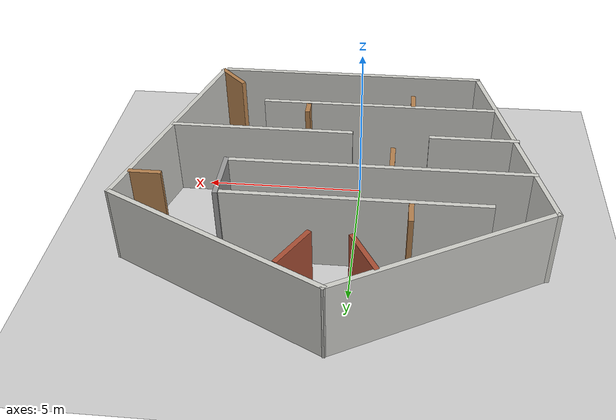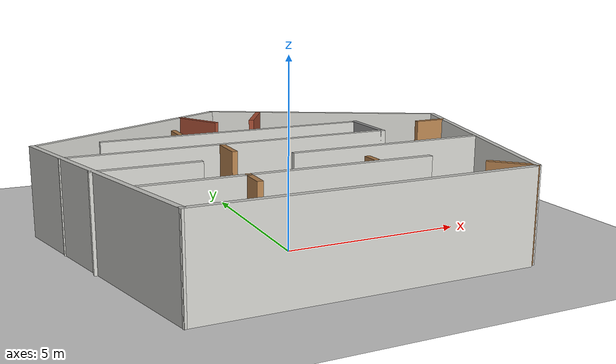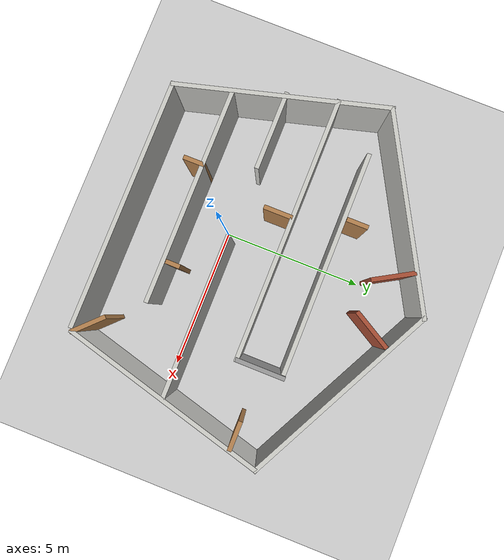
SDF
<sdf version="1.6">
 <world name="default">
  <light name="sun" type="directional">
   <pose>0 0 10 0 -0 0</pose>
   <diffuse>0.8 0.8 0.8 1</diffuse>
   <specular>0.2 0.2 0.2 1</specular>
   <attenuation>
    <range>1000</range>
    <constant>0.9</constant>
    <linear>0.01</linear>
    <quadratic>0.001</quadratic>
   </attenuation>
   <direction>-0.5 0.1 -0.9</direction>
  </light>
  <model name="ground_plane">
   <static>1</static>
   <link name="link">
    <collision name="collision">
     <geometry><plane><normal>0 0 1</normal><size>100 100</size></plane></geometry>
     <surface>
      <contact><collide_bitmask>65535</collide_bitmask></contact>
      <friction><ode><mu>100</mu><mu2>50</mu2></ode></friction>
     </surface>
    </collision>
    <visual name="visual">
     <cast_shadows>0</cast_shadows>
     <geometry><plane><normal>0 0 1</normal><size>100 100</size></plane></geometry>
     <material>
      <script><uri>file://media/materials/scripts/gazebo.material</uri><name>Gazebo/Grey</name></script>
     </material>
    </visual>
   </link>
  </model>
  <gravity>0 0 -9.8</gravity>
  <magnetic_field>6e-06 2.3e-05 -4.2e-05</magnetic_field>
  <atmosphere type="adiabatic"/>
  <physics name="default_physics" default="0" type="ode">
   <max_step_size>0.001</max_step_size>
   <real_time_factor>1</real_time_factor>
   <real_time_update_rate>1000</real_time_update_rate>
  </physics>
  <scene><ambient>0.4 0.4 0.4 1</ambient><background>0.7 0.7 0.7 1</background><shadows>1</shadows></scene>
  <audio><device>default</device></audio>
  <spherical_coordinates>
   <surface_model>EARTH_WGS84</surface_model>
   <latitude_deg>0</latitude_deg>
   <longitude_deg>0</longitude_deg>
   <elevation>0</elevation>
   <heading_deg>0</heading_deg>
  </spherical_coordinates>
  <model name="khj_world_1">
   <pose>0.620873 1.91877 0 0 -0 0</pose>
   <link name="Wall_33">
    <collision name="Wall_33_Collision">
     <geometry><box><size>7.10668 0.15 2.5</size></box></geometry>
     <pose>0 0 1.25 0 -0 0</pose>
    </collision>
    <visual name="Wall_33_Visual">
     <pose>0 0 1.25 0 -0 0</pose>
     <geometry><box><size>7.10668 0.15 2.5</size></box></geometry>
     <material>
      <script><uri>file://media/materials/scripts/gazebo.material</uri><name>Gazebo/CeilingTiled</name></script>
      <ambient>1 1 1 1</ambient>
     </material>
     <meta><layer>0</layer></meta>
    </visual>
    <pose>-3.20376 3.54471 0 0 -0 -2.63409</pose>
   </link>
   <link name="Wall_34">
    <collision name="Wall_34_Collision">
     <geometry><box><size>7.5 0.15 2.5</size></box></geometry>
     <pose>0 0 1.25 0 -0 0</pose>
    </collision>
    <visual name="Wall_34_Visual">
     <pose>0 0 1.25 0 -0 0</pose>
     <geometry><box><size>7.5 0.15 2.5</size></box></geometry>
     <material>
      <script><uri>file://media/materials/scripts/gazebo.material</uri><name>Gazebo/CeilingTiled</name></script>
      <ambient>1 1 1 1</ambient>
     </material>
     <meta><layer>0</layer></meta>
    </visual>
    <pose>-5.33299 -1.69553 0 0 -0 -1.309</pose>
   </link>
   <link name="Wall_36">
    <collision name="Wall_36_Collision">
     <geometry><box><size>7.5 0.15 2.5</size></box></geometry>
     <pose>0 0 1.25 0 -0 0</pose>
    </collision>
    <visual name="Wall_36_Visual">
     <pose>0 0 1.25 0 -0 0</pose>
     <geometry><box><size>7.5 0.15 2.5</size></box></geometry>
     <material>
      <script><uri>file://media/materials/scripts/gazebo.material</uri><name>Gazebo/CeilingTiled</name></script>
      <ambient>1 1 1 1</ambient>
     </material>
     <meta><layer>0</layer></meta>
    </visual>
    <pose>5.32389 -1.61461 0 0 -0 1.309</pose>
   </link>
   <link name="Wall_37">
    <collision name="Wall_37_Collision">
     <geometry><box><size>7.38527 0.15 2.5</size></box></geometry>
     <pose>0 0 1.25 0 -0 0</pose>
    </collision>
    <visual name="Wall_37_Visual">
     <pose>0 0 1.25 0 -0 0</pose>
     <geometry><box><size>7.38527 0.15 2.5</size></box></geometry>
     <material>
      <script><uri>file://media/materials/scripts/gazebo.material</uri><name>Gazebo/CeilingTiled</name></script>
      <ambient>1 1 1 1</ambient>
     </material>
     <meta><layer>0</layer></meta>
    </visual>
    <pose>3.05561 3.58516 0 0 -0 2.66799</pose>
   </link>
   <link name="Wall_39">
    <collision name="Wall_39_Collision">
     <geometry><box><size>8.75 0.15 2.5</size></box></geometry>
     <pose>0 0 1.25 0 -0 0</pose>
    </collision>
    <visual name="Wall_39_Visual">
     <pose>0 0 1.25 0 -0 0</pose>
     <geometry><box><size>8.75 0.15 2.5</size></box></geometry>
     <material>
      <script><uri>file://media/materials/scripts/gazebo.material</uri><name>Gazebo/CeilingTiled</name></script>
      <ambient>1 1 1 1</ambient>
     </material>
     <meta><layer>0</layer></meta>
    </visual>
    <pose>-0.081826 -5.2453 0 0 -0 0</pose>
   </link>
   <link name="Wall_41">
    <collision name="Wall_41_Collision">
     <geometry><box><size>7.5 0.15 2.5</size></box></geometry>
     <pose>0 0 1.25 0 -0 0</pose>
    </collision>
    <visual name="Wall_41_Visual">
     <pose>0 0 1.25 0 -0 0</pose>
     <geometry><box><size>7.5 0.15 2.5</size></box></geometry>
     <material>
      <script><uri>file://media/materials/scripts/gazebo.material</uri><name>Gazebo/CeilingTiled</name></script>
      <ambient>1 1 1 1</ambient>
     </material>
     <meta><layer>0</layer></meta>
    </visual>
    <pose>-1.10076 -3.30096 0 0 -0 0</pose>
   </link>
   <link name="Wall_44">
    <collision name="Wall_44_Collision">
     <geometry><box><size>5.75 0.15 2.5</size></box></geometry>
     <pose>0 0 1.25 0 -0 0</pose>
    </collision>
    <visual name="Wall_44_Visual">
     <pose>0 0 1.25 0 -0 0</pose>
     <geometry><box><size>5.75 0.15 2.5</size></box></geometry>
     <material>
      <script><uri>file://media/materials/scripts/gazebo.material</uri><name>Gazebo/CeilingTiled</name></script>
      <ambient>1 1 1 1</ambient>
     </material>
     <meta><layer>0</layer></meta>
    </visual>
    <pose>2.49768 -1.64229 0 0 -0 3.14159</pose>
   </link>
   <link name="Wall_47">
    <collision name="Wall_47_Collision">
     <geometry><box><size>2.75 0.15 2.5</size></box></geometry>
     <pose>0 0 1.25 0 -0 0</pose>
    </collision>
    <visual name="Wall_47_Visual">
     <pose>0 0 1.25 0 -0 0</pose>
     <geometry><box><size>2.75 0.15 2.5</size></box></geometry>
     <material>
      <script><uri>file://media/materials/scripts/gazebo.material</uri><name>Gazebo/CeilingTiled</name></script>
      <ambient>1 1 1 1</ambient>
     </material>
     <meta><layer>0</layer></meta>
    </visual>
    <pose>-4.12305 -1.60183 0 0 -0 0</pose>
   </link>
   <link name="Wall_49">
    <collision name="Wall_49_Collision">
     <geometry><box><size>9.25 0.15 2.5</size></box></geometry>
     <pose>0 0 1.25 0 -0 0</pose>
    </collision>
    <visual name="Wall_49_Visual">
     <pose>0 0 1.25 0 -0 0</pose>
     <geometry><box><size>9.25 0.15 2.5</size></box></geometry>
     <material>
      <script><uri>file://media/materials/scripts/gazebo.material</uri><name>Gazebo/CeilingTiled</name></script>
      <ambient>1 1 1 1</ambient>
     </material>
     <meta><layer>0</layer></meta>
    </visual>
    <pose>-1.2776 0.097304 0 0 -0 0</pose>
   </link>
   <link name="Wall_51">
    <collision name="Wall_51_Collision">
     <geometry><box><size>1.75 0.15 2.5</size></box></geometry>
     <pose>0 0 1.25 0 -0 0</pose>
    </collision>
    <visual name="Wall_51_Visual">
     <pose>0 0 1.25 0 -0 0</pose>
     <geometry><box><size>1.75 0.15 2.5</size></box></geometry>
     <material>
      <script><uri>file://media/materials/scripts/gazebo.material</uri><name>Gazebo/Grey</name></script>
      <ambient>1 1 1 1</ambient>
     </material>
     <meta><layer>0</layer></meta>
    </visual>
    <pose>3.2724 0.897304 0 0 -0 1.5708</pose>
   </link>
   <link name="Wall_53">
    <collision name="Wall_53_Collision">
     <geometry><box><size>7.75 0.15 2.5</size></box></geometry>
     <pose>0 0 1.25 0 -0 0</pose>
    </collision>
    <visual name="Wall_53_Visual">
     <pose>0 0 1.25 0 -0 0</pose>
     <geometry><box><size>7.75 0.15 2.5</size></box></geometry>
     <material>
      <script><uri>file://media/materials/scripts/gazebo.material</uri><name>Gazebo/CeilingTiled</name></script>
      <ambient>1 1 1 1</ambient>
     </material>
     <meta><layer>0</layer></meta>
    </visual>
    <pose>-0.692569 1.67507 0 0 -0 0</pose>
   </link>
   <link name="Wall_55">
    <collision name="Wall_55_Collision">
     <geometry><box><size>1.5 0.15 2.5</size></box></geometry>
     <pose>0 0 1.25 0 -0 0</pose>
    </collision>
    <visual name="Wall_55_Visual">
     <pose>0 0 1.25 0 -0 0</pose>
     <geometry><box><size>1.5 0.15 2.5</size></box></geometry>
     <material>
      <script><uri>file://media/materials/scripts/gazebo.material</uri><name>Gazebo/Bricks</name></script>
      <ambient>1 1 1 1</ambient>
     </material>
     <meta><layer>0</layer></meta>
    </visual>
    <pose>-1.08045 3.84148 0 0 -0 -1.0472</pose>
   </link>
   <link name="Wall_57">
    <collision name="Wall_57_Collision">
     <geometry><box><size>1.5 0.15 2.5</size></box></geometry>
     <pose>0 0 1.25 0 -0 0</pose>
    </collision>
    <visual name="Wall_57_Visual">
     <pose>0 0 1.25 0 -0 0</pose>
     <geometry><box><size>1.5 0.15 2.5</size></box></geometry>
     <material>
      <script><uri>file://media/materials/scripts/gazebo.material</uri><name>Gazebo/Bricks</name></script>
      <ambient>1 1 1 1</ambient>
     </material>
     <meta><layer>0</layer></meta>
    </visual>
    <pose>0.793256 3.80103 0 0 -0 -2.0944</pose>
   </link>
   <link name="Wall_59">
    <collision name="Wall_59_Collision">
     <geometry><box><size>0.75 0.15 2.5</size></box></geometry>
     <pose>0 0 1.25 0 -0 0</pose>
    </collision>
    <visual name="Wall_59_Visual">
     <pose>0 0 1.25 0 -0 0</pose>
     <geometry><box><size>0.75 0.15 2.5</size></box></geometry>
     <material>
      <script><uri>file://media/materials/scripts/gazebo.material</uri><name>Gazebo/Wood</name></script>
      <ambient>1 1 1 1</ambient>
     </material>
     <meta><layer>0</layer></meta>
    </visual>
    <pose>-2.22706 -3.60096 0 0 -0 -1.5708</pose>
   </link>
   <link name="Wall_61">
    <collision name="Wall_61_Collision">
     <geometry><box><size>0.5 0.15 2.5</size></box></geometry>
     <pose>0 0 1.25 0 -0 0</pose>
    </collision>
    <visual name="Wall_61_Visual">
     <pose>0 0 1.25 0 -0 0</pose>
     <geometry><box><size>0.5 0.15 2.5</size></box></geometry>
     <material>
      <script><uri>file://media/materials/scripts/gazebo.material</uri><name>Gazebo/Wood</name></script>
      <ambient>1 1 1 1</ambient>
     </material>
     <meta><layer>0</layer></meta>
    </visual>
    <pose>1.17121 -2.96414 0 0 -0 1.5708</pose>
   </link>
   <link name="Wall_63">
    <collision name="Wall_63_Collision">
     <geometry><box><size>1 0.15 2.5</size></box></geometry>
     <pose>0 0 1.25 0 -0 0</pose>
    </collision>
    <visual name="Wall_63_Visual">
     <pose>0 0 1.25 0 -0 0</pose>
     <geometry><box><size>1 0.15 2.5</size></box></geometry>
     <material>
      <script><uri>file://media/materials/scripts/gazebo.material</uri><name>Gazebo/Wood</name></script>
      <ambient>1 1 1 1</ambient>
     </material>
     <meta><layer>0</layer></meta>
    </visual>
    <pose>-1.66068 -0.408607 0 0 -0 -1.5708</pose>
   </link>
   <link name="Wall_66">
    <collision name="Wall_66_Collision">
     <geometry><box><size>1 0.15 2.5</size></box></geometry>
     <pose>0 0 1.25 0 -0 0</pose>
    </collision>
    <visual name="Wall_66_Visual">
     <pose>0 0 1.25 0 -0 0</pose>
     <geometry><box><size>1 0.15 2.5</size></box></geometry>
     <material>
      <script><uri>file://media/materials/scripts/gazebo.material</uri><name>Gazebo/Wood</name></script>
      <ambient>1 1 1 1</ambient>
     </material>
     <meta><layer>0</layer></meta>
    </visual>
    <pose>5.5204 0.946871 0 0 -0 0</pose>
   </link>
   <link name="Wall_68">
    <collision name="Wall_68_Collision">
     <geometry><box><size>0.75 0.15 2.5</size></box></geometry>
     <pose>0 0 1.25 0 -0 0</pose>
    </collision>
    <visual name="Wall_68_Visual">
     <pose>0 0 1.25 0 -0 0</pose>
     <geometry><box><size>0.75 0.15 2.5</size></box></geometry>
     <material>
      <script><uri>file://media/materials/scripts/gazebo.material</uri><name>Gazebo/Wood</name></script>
      <ambient>1 1 1 1</ambient>
     </material>
     <meta><layer>0</layer></meta>
    </visual>
    <pose>-2.26751 2.13689 0 0 -0 1.5708</pose>
   </link>
   <link name="Wall_70">
    <collision name="Wall_70_Collision">
     <geometry><box><size>1.25 0.15 2.5</size></box></geometry>
     <pose>0 0 1.25 0 -0 0</pose>
    </collision>
    <visual name="Wall_70_Visual">
     <pose>0 0 1.25 0 -0 0</pose>
     <geometry><box><size>1.25 0.15 2.5</size></box></geometry>
     <material>
      <script><uri>file://media/materials/scripts/gazebo.material</uri><name>Gazebo/Wood</name></script>
      <ambient>1 1 1 1</ambient>
     </material>
     <meta><layer>0</layer></meta>
    </visual>
    <pose>3.98382 -4.77548 0 0 -0 2.35619</pose>
   </link>
   <static>1</static>
  </model>
 </world>
</sdf>
